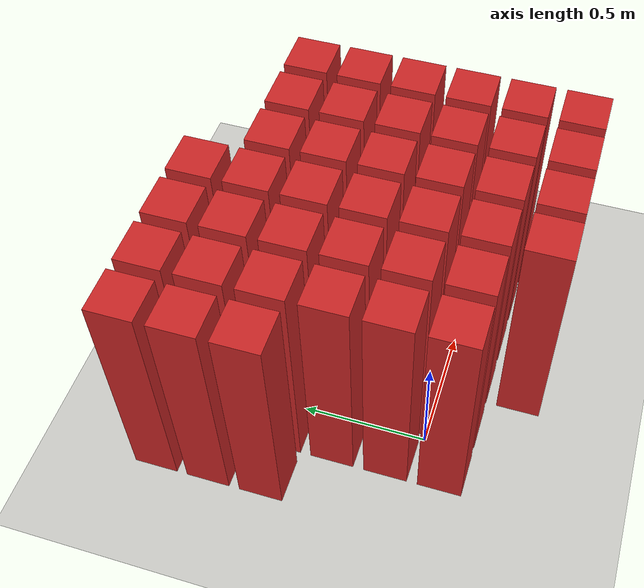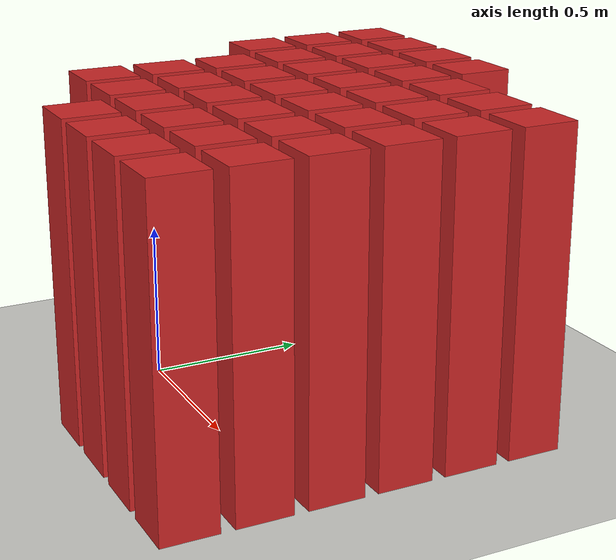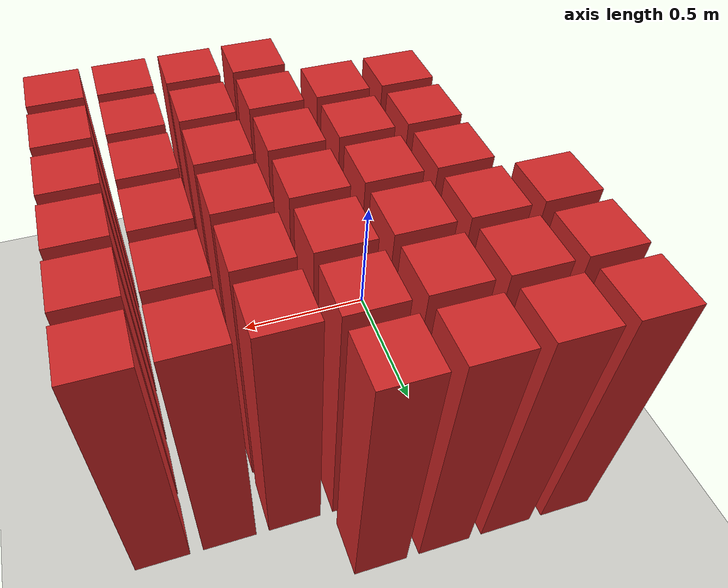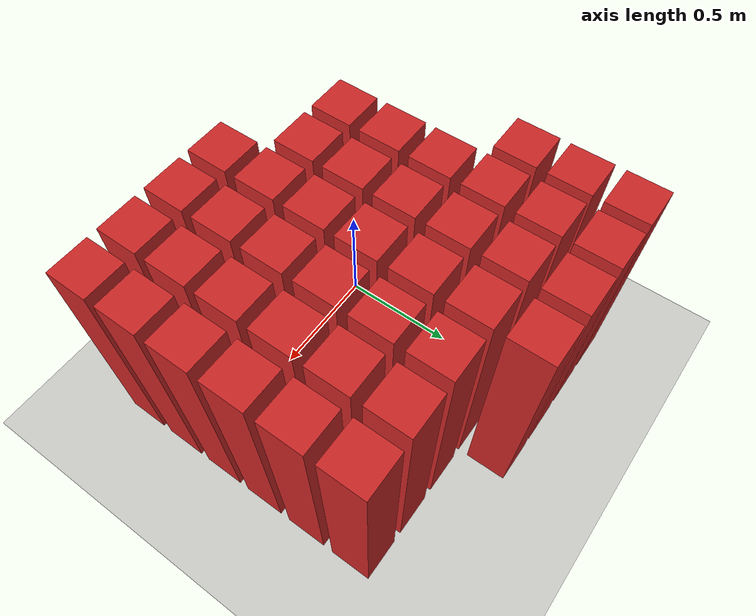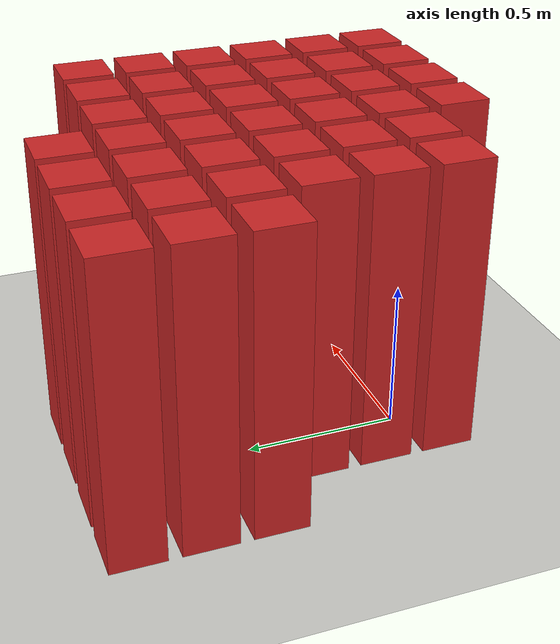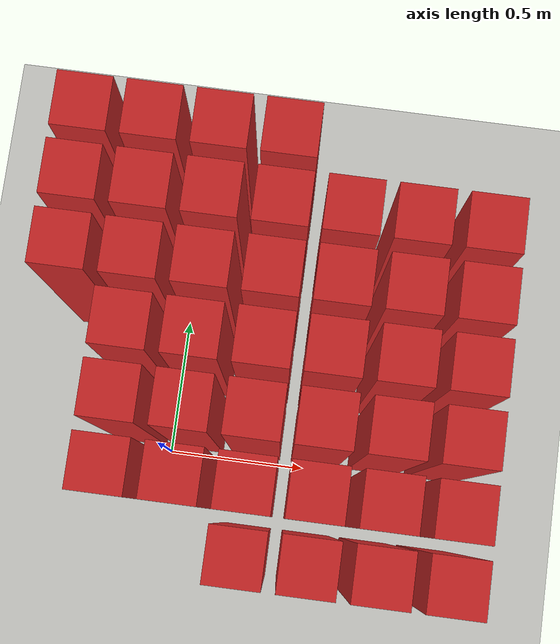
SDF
<sdf version="1.7">
 <world name="default">
  <model name="ground_plane">
   <static>1</static>
   <link name="link">
    <collision name="collision">
     <geometry><plane><normal>0 0 1</normal><size>100 100</size></plane></geometry>
     <surface>
      <contact><collide_bitmask>65535</collide_bitmask></contact>
      <friction><ode><mu>100</mu><mu2>50</mu2></ode></friction>
     </surface>
    </collision>
    <visual name="visual">
     <cast_shadows>0</cast_shadows>
     <geometry><plane><normal>0 0 1</normal><size>100 100</size></plane></geometry>
     <material>
      <script><uri>file://media/materials/scripts/gazebo.material</uri><name>Gazebo/CeilingTiled</name></script>
     </material>
    </visual>
   </link>
  </model>
  <model name="wall243">
   <link name="link">
    <pose>0 0 0.5 0 -0 0</pose>
    <inertial>
     <mass>0.5167</mass>
     <inertia>
      <ixx>0.000861167</ixx>
      <ixy>0</ixy>
      <ixz>0</ixz>
      <iyy>0.000861167</iyy>
      <iyz>0</iyz>
      <izz>0.000861167</izz>
     </inertia>
    </inertial>
    <collision name="collision">
     <geometry><box><size>0.21 0.21 1</size></box></geometry>
     <surface>
      <contact>
       <poissons_ratio>0.347</poissons_ratio>
       <elastic_modulus>8.8e+09</elastic_modulus>
       <ode><kp>100000</kp><kd>100</kd><max_vel>100</max_vel><min_depth>0.001</min_depth></ode>
      </contact>
      <friction>
       <torsional>
        <coefficient>1</coefficient>
        <use_patch_radius>0</use_patch_radius>
        <surface_radius>0.01</surface_radius>
       </torsional>
      </friction>
     </surface>
    </collision>
    <visual name="visual">
     <geometry><box><size>0.175 0.175 1</size></box></geometry>
     <material>
      <script><uri>file://media/materials/scripts/gazebo.material</uri><name>Gazebo/Red</name></script>
     </material>
    </visual>
   </link>
   <pose>0.326087 -0.326087 0 0 -0 0</pose>
  </model>
  <model name="wall244">
   <link name="link">
    <pose>0 0 0.5 0 -0 0</pose>
    <inertial>
     <mass>0.5167</mass>
     <inertia>
      <ixx>0.000861167</ixx>
      <ixy>0</ixy>
      <ixz>0</ixz>
      <iyy>0.000861167</iyy>
      <iyz>0</iyz>
      <izz>0.000861167</izz>
     </inertia>
    </inertial>
    <collision name="collision">
     <geometry><box><size>0.21 0.21 1</size></box></geometry>
     <surface>
      <contact>
       <poissons_ratio>0.347</poissons_ratio>
       <elastic_modulus>8.8e+09</elastic_modulus>
       <ode><kp>100000</kp><kd>100</kd><max_vel>100</max_vel><min_depth>0.001</min_depth></ode>
      </contact>
      <friction>
       <torsional>
        <coefficient>1</coefficient>
        <use_patch_radius>0</use_patch_radius>
        <surface_radius>0.01</surface_radius>
       </torsional>
      </friction>
     </surface>
    </collision>
    <visual name="visual">
     <geometry><box><size>0.175 0.175 1</size></box></geometry>
     <material>
      <script><uri>file://media/materials/scripts/gazebo.material</uri><name>Gazebo/Red</name></script>
     </material>
    </visual>
   </link>
   <pose>0.543478 -0.326087 0 0 -0 0</pose>
  </model>
  <model name="wall245">
   <link name="link">
    <pose>0 0 0.5 0 -0 0</pose>
    <inertial>
     <mass>0.5167</mass>
     <inertia>
      <ixx>0.000861167</ixx>
      <ixy>0</ixy>
      <ixz>0</ixz>
      <iyy>0.000861167</iyy>
      <iyz>0</iyz>
      <izz>0.000861167</izz>
     </inertia>
    </inertial>
    <collision name="collision">
     <geometry><box><size>0.21 0.21 1</size></box></geometry>
     <surface>
      <contact>
       <poissons_ratio>0.347</poissons_ratio>
       <elastic_modulus>8.8e+09</elastic_modulus>
       <ode><kp>100000</kp><kd>100</kd><max_vel>100</max_vel><min_depth>0.001</min_depth></ode>
      </contact>
      <friction>
       <torsional>
        <coefficient>1</coefficient>
        <use_patch_radius>0</use_patch_radius>
        <surface_radius>0.01</surface_radius>
       </torsional>
      </friction>
     </surface>
    </collision>
    <visual name="visual">
     <geometry><box><size>0.175 0.175 1</size></box></geometry>
     <material>
      <script><uri>file://media/materials/scripts/gazebo.material</uri><name>Gazebo/Red</name></script>
     </material>
    </visual>
   </link>
   <pose>0.76087 -0.326087 0 0 -0 0</pose>
  </model>
  <model name="wall246">
   <link name="link">
    <pose>0 0 0.5 0 -0 0</pose>
    <inertial>
     <mass>0.5167</mass>
     <inertia>
      <ixx>0.000861167</ixx>
      <ixy>0</ixy>
      <ixz>0</ixz>
      <iyy>0.000861167</iyy>
      <iyz>0</iyz>
      <izz>0.000861167</izz>
     </inertia>
    </inertial>
    <collision name="collision">
     <geometry><box><size>0.21 0.21 1</size></box></geometry>
     <surface>
      <contact>
       <poissons_ratio>0.347</poissons_ratio>
       <elastic_modulus>8.8e+09</elastic_modulus>
       <ode><kp>100000</kp><kd>100</kd><max_vel>100</max_vel><min_depth>0.001</min_depth></ode>
      </contact>
      <friction>
       <torsional>
        <coefficient>1</coefficient>
        <use_patch_radius>0</use_patch_radius>
        <surface_radius>0.01</surface_radius>
       </torsional>
      </friction>
     </surface>
    </collision>
    <visual name="visual">
     <geometry><box><size>0.175 0.175 1</size></box></geometry>
     <material>
      <script><uri>file://media/materials/scripts/gazebo.material</uri><name>Gazebo/Red</name></script>
     </material>
    </visual>
   </link>
   <pose>0.978261 -0.326087 0 0 -0 0</pose>
  </model>
  <model name="wall264">
   <link name="link">
    <pose>0 0 0.5 0 -0 0</pose>
    <inertial>
     <mass>0.5167</mass>
     <inertia>
      <ixx>0.000861167</ixx>
      <ixy>0</ixy>
      <ixz>0</ixz>
      <iyy>0.000861167</iyy>
      <iyz>0</iyz>
      <izz>0.000861167</izz>
     </inertia>
    </inertial>
    <collision name="collision">
     <geometry><box><size>0.21 0.21 1</size></box></geometry>
     <surface>
      <contact>
       <poissons_ratio>0.347</poissons_ratio>
       <elastic_modulus>8.8e+09</elastic_modulus>
       <ode><kp>100000</kp><kd>100</kd><max_vel>100</max_vel><min_depth>0.001</min_depth></ode>
      </contact>
      <friction>
       <torsional>
        <coefficient>1</coefficient>
        <use_patch_radius>0</use_patch_radius>
        <surface_radius>0.01</surface_radius>
       </torsional>
      </friction>
     </surface>
    </collision>
    <visual name="visual">
     <geometry><box><size>0.175 0.175 1</size></box></geometry>
     <material>
      <script><uri>file://media/materials/scripts/gazebo.material</uri><name>Gazebo/Red</name></script>
     </material>
    </visual>
   </link>
   <pose>-0.108696 -0.108696 0 0 -0 0</pose>
  </model>
  <model name="wall265">
   <link name="link">
    <pose>0 0 0.5 0 -0 0</pose>
    <inertial>
     <mass>0.5167</mass>
     <inertia>
      <ixx>0.000861167</ixx>
      <ixy>0</ixy>
      <ixz>0</ixz>
      <iyy>0.000861167</iyy>
      <iyz>0</iyz>
      <izz>0.000861167</izz>
     </inertia>
    </inertial>
    <collision name="collision">
     <geometry><box><size>0.21 0.21 1</size></box></geometry>
     <surface>
      <contact>
       <poissons_ratio>0.347</poissons_ratio>
       <elastic_modulus>8.8e+09</elastic_modulus>
       <ode><kp>100000</kp><kd>100</kd><max_vel>100</max_vel><min_depth>0.001</min_depth></ode>
      </contact>
      <friction>
       <torsional>
        <coefficient>1</coefficient>
        <use_patch_radius>0</use_patch_radius>
        <surface_radius>0.01</surface_radius>
       </torsional>
      </friction>
     </surface>
    </collision>
    <visual name="visual">
     <geometry><box><size>0.175 0.175 1</size></box></geometry>
     <material>
      <script><uri>file://media/materials/scripts/gazebo.material</uri><name>Gazebo/Red</name></script>
     </material>
    </visual>
   </link>
   <pose>0.108696 -0.108696 0 0 -0 0</pose>
  </model>
  <model name="wall266">
   <link name="link">
    <pose>0 0 0.5 0 -0 0</pose>
    <inertial>
     <mass>0.5167</mass>
     <inertia>
      <ixx>0.000861167</ixx>
      <ixy>0</ixy>
      <ixz>0</ixz>
      <iyy>0.000861167</iyy>
      <iyz>0</iyz>
      <izz>0.000861167</izz>
     </inertia>
    </inertial>
    <collision name="collision">
     <geometry><box><size>0.21 0.21 1</size></box></geometry>
     <surface>
      <contact>
       <poissons_ratio>0.347</poissons_ratio>
       <elastic_modulus>8.8e+09</elastic_modulus>
       <ode><kp>100000</kp><kd>100</kd><max_vel>100</max_vel><min_depth>0.001</min_depth></ode>
      </contact>
      <friction>
       <torsional>
        <coefficient>1</coefficient>
        <use_patch_radius>0</use_patch_radius>
        <surface_radius>0.01</surface_radius>
       </torsional>
      </friction>
     </surface>
    </collision>
    <visual name="visual">
     <geometry><box><size>0.175 0.175 1</size></box></geometry>
     <material>
      <script><uri>file://media/materials/scripts/gazebo.material</uri><name>Gazebo/Red</name></script>
     </material>
    </visual>
   </link>
   <pose>0.326087 -0.108696 0 0 -0 0</pose>
  </model>
  <model name="wall267">
   <link name="link">
    <pose>0 0 0.5 0 -0 0</pose>
    <inertial>
     <mass>0.5167</mass>
     <inertia>
      <ixx>0.000861167</ixx>
      <ixy>0</ixy>
      <ixz>0</ixz>
      <iyy>0.000861167</iyy>
      <iyz>0</iyz>
      <izz>0.000861167</izz>
     </inertia>
    </inertial>
    <collision name="collision">
     <geometry><box><size>0.21 0.21 1</size></box></geometry>
     <surface>
      <contact>
       <poissons_ratio>0.347</poissons_ratio>
       <elastic_modulus>8.8e+09</elastic_modulus>
       <ode><kp>100000</kp><kd>100</kd><max_vel>100</max_vel><min_depth>0.001</min_depth></ode>
      </contact>
      <friction>
       <torsional>
        <coefficient>1</coefficient>
        <use_patch_radius>0</use_patch_radius>
        <surface_radius>0.01</surface_radius>
       </torsional>
      </friction>
     </surface>
    </collision>
    <visual name="visual">
     <geometry><box><size>0.175 0.175 1</size></box></geometry>
     <material>
      <script><uri>file://media/materials/scripts/gazebo.material</uri><name>Gazebo/Red</name></script>
     </material>
    </visual>
   </link>
   <pose>0.543478 -0.108696 0 0 -0 0</pose>
  </model>
  <model name="wall268">
   <link name="link">
    <pose>0 0 0.5 0 -0 0</pose>
    <inertial>
     <mass>0.5167</mass>
     <inertia>
      <ixx>0.000861167</ixx>
      <ixy>0</ixy>
      <ixz>0</ixz>
      <iyy>0.000861167</iyy>
      <iyz>0</iyz>
      <izz>0.000861167</izz>
     </inertia>
    </inertial>
    <collision name="collision">
     <geometry><box><size>0.21 0.21 1</size></box></geometry>
     <surface>
      <contact>
       <poissons_ratio>0.347</poissons_ratio>
       <elastic_modulus>8.8e+09</elastic_modulus>
       <ode><kp>100000</kp><kd>100</kd><max_vel>100</max_vel><min_depth>0.001</min_depth></ode>
      </contact>
      <friction>
       <torsional>
        <coefficient>1</coefficient>
        <use_patch_radius>0</use_patch_radius>
        <surface_radius>0.01</surface_radius>
       </torsional>
      </friction>
     </surface>
    </collision>
    <visual name="visual">
     <geometry><box><size>0.175 0.175 1</size></box></geometry>
     <material>
      <script><uri>file://media/materials/scripts/gazebo.material</uri><name>Gazebo/Red</name></script>
     </material>
    </visual>
   </link>
   <pose>0.76087 -0.108696 0 0 -0 0</pose>
  </model>
  <model name="wall269">
   <link name="link">
    <pose>0 0 0.5 0 -0 0</pose>
    <inertial>
     <mass>0.5167</mass>
     <inertia>
      <ixx>0.000861167</ixx>
      <ixy>0</ixy>
      <ixz>0</ixz>
      <iyy>0.000861167</iyy>
      <iyz>0</iyz>
      <izz>0.000861167</izz>
     </inertia>
    </inertial>
    <collision name="collision">
     <geometry><box><size>0.21 0.21 1</size></box></geometry>
     <surface>
      <contact>
       <poissons_ratio>0.347</poissons_ratio>
       <elastic_modulus>8.8e+09</elastic_modulus>
       <ode><kp>100000</kp><kd>100</kd><max_vel>100</max_vel><min_depth>0.001</min_depth></ode>
      </contact>
      <friction>
       <torsional>
        <coefficient>1</coefficient>
        <use_patch_radius>0</use_patch_radius>
        <surface_radius>0.01</surface_radius>
       </torsional>
      </friction>
     </surface>
    </collision>
    <visual name="visual">
     <geometry><box><size>0.175 0.175 1</size></box></geometry>
     <material>
      <script><uri>file://media/materials/scripts/gazebo.material</uri><name>Gazebo/Red</name></script>
     </material>
    </visual>
   </link>
   <pose>0.978261 -0.108696 0 0 -0 0</pose>
  </model>
  <model name="wall287">
   <link name="link">
    <pose>0 0 0.5 0 -0 0</pose>
    <inertial>
     <mass>0.5167</mass>
     <inertia>
      <ixx>0.000861167</ixx>
      <ixy>0</ixy>
      <ixz>0</ixz>
      <iyy>0.000861167</iyy>
      <iyz>0</iyz>
      <izz>0.000861167</izz>
     </inertia>
    </inertial>
    <collision name="collision">
     <geometry><box><size>0.21 0.21 1</size></box></geometry>
     <surface>
      <contact>
       <poissons_ratio>0.347</poissons_ratio>
       <elastic_modulus>8.8e+09</elastic_modulus>
       <ode><kp>100000</kp><kd>100</kd><max_vel>100</max_vel><min_depth>0.001</min_depth></ode>
      </contact>
      <friction>
       <torsional>
        <coefficient>1</coefficient>
        <use_patch_radius>0</use_patch_radius>
        <surface_radius>0.01</surface_radius>
       </torsional>
      </friction>
     </surface>
    </collision>
    <visual name="visual">
     <geometry><box><size>0.175 0.175 1</size></box></geometry>
     <material>
      <script><uri>file://media/materials/scripts/gazebo.material</uri><name>Gazebo/Red</name></script>
     </material>
    </visual>
   </link>
   <pose>-0.108696 0.108696 0 0 -0 0</pose>
  </model>
  <model name="wall288">
   <link name="link">
    <pose>0 0 0.5 0 -0 0</pose>
    <inertial>
     <mass>0.5167</mass>
     <inertia>
      <ixx>0.000861167</ixx>
      <ixy>0</ixy>
      <ixz>0</ixz>
      <iyy>0.000861167</iyy>
      <iyz>0</iyz>
      <izz>0.000861167</izz>
     </inertia>
    </inertial>
    <collision name="collision">
     <geometry><box><size>0.21 0.21 1</size></box></geometry>
     <surface>
      <contact>
       <poissons_ratio>0.347</poissons_ratio>
       <elastic_modulus>8.8e+09</elastic_modulus>
       <ode><kp>100000</kp><kd>100</kd><max_vel>100</max_vel><min_depth>0.001</min_depth></ode>
      </contact>
      <friction>
       <torsional>
        <coefficient>1</coefficient>
        <use_patch_radius>0</use_patch_radius>
        <surface_radius>0.01</surface_radius>
       </torsional>
      </friction>
     </surface>
    </collision>
    <visual name="visual">
     <geometry><box><size>0.175 0.175 1</size></box></geometry>
     <material>
      <script><uri>file://media/materials/scripts/gazebo.material</uri><name>Gazebo/Red</name></script>
     </material>
    </visual>
   </link>
   <pose>0.108696 0.108696 0 0 -0 0</pose>
  </model>
  <model name="wall289">
   <link name="link">
    <pose>0 0 0.5 0 -0 0</pose>
    <inertial>
     <mass>0.5167</mass>
     <inertia>
      <ixx>0.000861167</ixx>
      <ixy>0</ixy>
      <ixz>0</ixz>
      <iyy>0.000861167</iyy>
      <iyz>0</iyz>
      <izz>0.000861167</izz>
     </inertia>
    </inertial>
    <collision name="collision">
     <geometry><box><size>0.21 0.21 1</size></box></geometry>
     <surface>
      <contact>
       <poissons_ratio>0.347</poissons_ratio>
       <elastic_modulus>8.8e+09</elastic_modulus>
       <ode><kp>100000</kp><kd>100</kd><max_vel>100</max_vel><min_depth>0.001</min_depth></ode>
      </contact>
      <friction>
       <torsional>
        <coefficient>1</coefficient>
        <use_patch_radius>0</use_patch_radius>
        <surface_radius>0.01</surface_radius>
       </torsional>
      </friction>
     </surface>
    </collision>
    <visual name="visual">
     <geometry><box><size>0.175 0.175 1</size></box></geometry>
     <material>
      <script><uri>file://media/materials/scripts/gazebo.material</uri><name>Gazebo/Red</name></script>
     </material>
    </visual>
   </link>
   <pose>0.326087 0.108696 0 0 -0 0</pose>
  </model>
  <model name="wall290">
   <link name="link">
    <pose>0 0 0.5 0 -0 0</pose>
    <inertial>
     <mass>0.5167</mass>
     <inertia>
      <ixx>0.000861167</ixx>
      <ixy>0</ixy>
      <ixz>0</ixz>
      <iyy>0.000861167</iyy>
      <iyz>0</iyz>
      <izz>0.000861167</izz>
     </inertia>
    </inertial>
    <collision name="collision">
     <geometry><box><size>0.21 0.21 1</size></box></geometry>
     <surface>
      <contact>
       <poissons_ratio>0.347</poissons_ratio>
       <elastic_modulus>8.8e+09</elastic_modulus>
       <ode><kp>100000</kp><kd>100</kd><max_vel>100</max_vel><min_depth>0.001</min_depth></ode>
      </contact>
      <friction>
       <torsional>
        <coefficient>1</coefficient>
        <use_patch_radius>0</use_patch_radius>
        <surface_radius>0.01</surface_radius>
       </torsional>
      </friction>
     </surface>
    </collision>
    <visual name="visual">
     <geometry><box><size>0.175 0.175 1</size></box></geometry>
     <material>
      <script><uri>file://media/materials/scripts/gazebo.material</uri><name>Gazebo/Red</name></script>
     </material>
    </visual>
   </link>
   <pose>0.543478 0.108696 0 0 -0 0</pose>
  </model>
  <model name="wall291">
   <link name="link">
    <pose>0 0 0.5 0 -0 0</pose>
    <inertial>
     <mass>0.5167</mass>
     <inertia>
      <ixx>0.000861167</ixx>
      <ixy>0</ixy>
      <ixz>0</ixz>
      <iyy>0.000861167</iyy>
      <iyz>0</iyz>
      <izz>0.000861167</izz>
     </inertia>
    </inertial>
    <collision name="collision">
     <geometry><box><size>0.21 0.21 1</size></box></geometry>
     <surface>
      <contact>
       <poissons_ratio>0.347</poissons_ratio>
       <elastic_modulus>8.8e+09</elastic_modulus>
       <ode><kp>100000</kp><kd>100</kd><max_vel>100</max_vel><min_depth>0.001</min_depth></ode>
      </contact>
      <friction>
       <torsional>
        <coefficient>1</coefficient>
        <use_patch_radius>0</use_patch_radius>
        <surface_radius>0.01</surface_radius>
       </torsional>
      </friction>
     </surface>
    </collision>
    <visual name="visual">
     <geometry><box><size>0.175 0.175 1</size></box></geometry>
     <material>
      <script><uri>file://media/materials/scripts/gazebo.material</uri><name>Gazebo/Red</name></script>
     </material>
    </visual>
   </link>
   <pose>0.76087 0.108696 0 0 -0 0</pose>
  </model>
  <model name="wall292">
   <link name="link">
    <pose>0 0 0.5 0 -0 0</pose>
    <inertial>
     <mass>0.5167</mass>
     <inertia>
      <ixx>0.000861167</ixx>
      <ixy>0</ixy>
      <ixz>0</ixz>
      <iyy>0.000861167</iyy>
      <iyz>0</iyz>
      <izz>0.000861167</izz>
     </inertia>
    </inertial>
    <collision name="collision">
     <geometry><box><size>0.21 0.21 1</size></box></geometry>
     <surface>
      <contact>
       <poissons_ratio>0.347</poissons_ratio>
       <elastic_modulus>8.8e+09</elastic_modulus>
       <ode><kp>100000</kp><kd>100</kd><max_vel>100</max_vel><min_depth>0.001</min_depth></ode>
      </contact>
      <friction>
       <torsional>
        <coefficient>1</coefficient>
        <use_patch_radius>0</use_patch_radius>
        <surface_radius>0.01</surface_radius>
       </torsional>
      </friction>
     </surface>
    </collision>
    <visual name="visual">
     <geometry><box><size>0.175 0.175 1</size></box></geometry>
     <material>
      <script><uri>file://media/materials/scripts/gazebo.material</uri><name>Gazebo/Red</name></script>
     </material>
    </visual>
   </link>
   <pose>0.978261 0.108696 0 0 -0 0</pose>
  </model>
  <model name="wall310">
   <link name="link">
    <pose>0 0 0.5 0 -0 0</pose>
    <inertial>
     <mass>0.5167</mass>
     <inertia>
      <ixx>0.000861167</ixx>
      <ixy>0</ixy>
      <ixz>0</ixz>
      <iyy>0.000861167</iyy>
      <iyz>0</iyz>
      <izz>0.000861167</izz>
     </inertia>
    </inertial>
    <collision name="collision">
     <geometry><box><size>0.21 0.21 1</size></box></geometry>
     <surface>
      <contact>
       <poissons_ratio>0.347</poissons_ratio>
       <elastic_modulus>8.8e+09</elastic_modulus>
       <ode><kp>100000</kp><kd>100</kd><max_vel>100</max_vel><min_depth>0.001</min_depth></ode>
      </contact>
      <friction>
       <torsional>
        <coefficient>1</coefficient>
        <use_patch_radius>0</use_patch_radius>
        <surface_radius>0.01</surface_radius>
       </torsional>
      </friction>
     </surface>
    </collision>
    <visual name="visual">
     <geometry><box><size>0.175 0.175 1</size></box></geometry>
     <material>
      <script><uri>file://media/materials/scripts/gazebo.material</uri><name>Gazebo/Red</name></script>
     </material>
    </visual>
   </link>
   <pose>-0.108696 0.326087 0 0 -0 0</pose>
  </model>
  <model name="wall311">
   <link name="link">
    <pose>0 0 0.5 0 -0 0</pose>
    <inertial>
     <mass>0.5167</mass>
     <inertia>
      <ixx>0.000861167</ixx>
      <ixy>0</ixy>
      <ixz>0</ixz>
      <iyy>0.000861167</iyy>
      <iyz>0</iyz>
      <izz>0.000861167</izz>
     </inertia>
    </inertial>
    <collision name="collision">
     <geometry><box><size>0.21 0.21 1</size></box></geometry>
     <surface>
      <contact>
       <poissons_ratio>0.347</poissons_ratio>
       <elastic_modulus>8.8e+09</elastic_modulus>
       <ode><kp>100000</kp><kd>100</kd><max_vel>100</max_vel><min_depth>0.001</min_depth></ode>
      </contact>
      <friction>
       <torsional>
        <coefficient>1</coefficient>
        <use_patch_radius>0</use_patch_radius>
        <surface_radius>0.01</surface_radius>
       </torsional>
      </friction>
     </surface>
    </collision>
    <visual name="visual">
     <geometry><box><size>0.175 0.175 1</size></box></geometry>
     <material>
      <script><uri>file://media/materials/scripts/gazebo.material</uri><name>Gazebo/Red</name></script>
     </material>
    </visual>
   </link>
   <pose>0.108696 0.326087 0 0 -0 0</pose>
  </model>
  <model name="wall312">
   <link name="link">
    <pose>0 0 0.5 0 -0 0</pose>
    <inertial>
     <mass>0.5167</mass>
     <inertia>
      <ixx>0.000861167</ixx>
      <ixy>0</ixy>
      <ixz>0</ixz>
      <iyy>0.000861167</iyy>
      <iyz>0</iyz>
      <izz>0.000861167</izz>
     </inertia>
    </inertial>
    <collision name="collision">
     <geometry><box><size>0.21 0.21 1</size></box></geometry>
     <surface>
      <contact>
       <poissons_ratio>0.347</poissons_ratio>
       <elastic_modulus>8.8e+09</elastic_modulus>
       <ode><kp>100000</kp><kd>100</kd><max_vel>100</max_vel><min_depth>0.001</min_depth></ode>
      </contact>
      <friction>
       <torsional>
        <coefficient>1</coefficient>
        <use_patch_radius>0</use_patch_radius>
        <surface_radius>0.01</surface_radius>
       </torsional>
      </friction>
     </surface>
    </collision>
    <visual name="visual">
     <geometry><box><size>0.175 0.175 1</size></box></geometry>
     <material>
      <script><uri>file://media/materials/scripts/gazebo.material</uri><name>Gazebo/Red</name></script>
     </material>
    </visual>
   </link>
   <pose>0.326087 0.326087 0 0 -0 0</pose>
  </model>
  <model name="wall313">
   <link name="link">
    <pose>0 0 0.5 0 -0 0</pose>
    <inertial>
     <mass>0.5167</mass>
     <inertia>
      <ixx>0.000861167</ixx>
      <ixy>0</ixy>
      <ixz>0</ixz>
      <iyy>0.000861167</iyy>
      <iyz>0</iyz>
      <izz>0.000861167</izz>
     </inertia>
    </inertial>
    <collision name="collision">
     <geometry><box><size>0.21 0.21 1</size></box></geometry>
     <surface>
      <contact>
       <poissons_ratio>0.347</poissons_ratio>
       <elastic_modulus>8.8e+09</elastic_modulus>
       <ode><kp>100000</kp><kd>100</kd><max_vel>100</max_vel><min_depth>0.001</min_depth></ode>
      </contact>
      <friction>
       <torsional>
        <coefficient>1</coefficient>
        <use_patch_radius>0</use_patch_radius>
        <surface_radius>0.01</surface_radius>
       </torsional>
      </friction>
     </surface>
    </collision>
    <visual name="visual">
     <geometry><box><size>0.175 0.175 1</size></box></geometry>
     <material>
      <script><uri>file://media/materials/scripts/gazebo.material</uri><name>Gazebo/Red</name></script>
     </material>
    </visual>
   </link>
   <pose>0.543478 0.326087 0 0 -0 0</pose>
  </model>
  <model name="wall314">
   <link name="link">
    <pose>0 0 0.5 0 -0 0</pose>
    <inertial>
     <mass>0.5167</mass>
     <inertia>
      <ixx>0.000861167</ixx>
      <ixy>0</ixy>
      <ixz>0</ixz>
      <iyy>0.000861167</iyy>
      <iyz>0</iyz>
      <izz>0.000861167</izz>
     </inertia>
    </inertial>
    <collision name="collision">
     <geometry><box><size>0.21 0.21 1</size></box></geometry>
     <surface>
      <contact>
       <poissons_ratio>0.347</poissons_ratio>
       <elastic_modulus>8.8e+09</elastic_modulus>
       <ode><kp>100000</kp><kd>100</kd><max_vel>100</max_vel><min_depth>0.001</min_depth></ode>
      </contact>
      <friction>
       <torsional>
        <coefficient>1</coefficient>
        <use_patch_radius>0</use_patch_radius>
        <surface_radius>0.01</surface_radius>
       </torsional>
      </friction>
     </surface>
    </collision>
    <visual name="visual">
     <geometry><box><size>0.175 0.175 1</size></box></geometry>
     <material>
      <script><uri>file://media/materials/scripts/gazebo.material</uri><name>Gazebo/Red</name></script>
     </material>
    </visual>
   </link>
   <pose>0.76087 0.326087 0 0 -0 0</pose>
  </model>
  <model name="wall315">
   <link name="link">
    <pose>0 0 0.5 0 -0 0</pose>
    <inertial>
     <mass>0.5167</mass>
     <inertia>
      <ixx>0.000861167</ixx>
      <ixy>0</ixy>
      <ixz>0</ixz>
      <iyy>0.000861167</iyy>
      <iyz>0</iyz>
      <izz>0.000861167</izz>
     </inertia>
    </inertial>
    <collision name="collision">
     <geometry><box><size>0.21 0.21 1</size></box></geometry>
     <surface>
      <contact>
       <poissons_ratio>0.347</poissons_ratio>
       <elastic_modulus>8.8e+09</elastic_modulus>
       <ode><kp>100000</kp><kd>100</kd><max_vel>100</max_vel><min_depth>0.001</min_depth></ode>
      </contact>
      <friction>
       <torsional>
        <coefficient>1</coefficient>
        <use_patch_radius>0</use_patch_radius>
        <surface_radius>0.01</surface_radius>
       </torsional>
      </friction>
     </surface>
    </collision>
    <visual name="visual">
     <geometry><box><size>0.175 0.175 1</size></box></geometry>
     <material>
      <script><uri>file://media/materials/scripts/gazebo.material</uri><name>Gazebo/Red</name></script>
     </material>
    </visual>
   </link>
   <pose>0.978261 0.326087 0 0 -0 0</pose>
  </model>
  <model name="wall332">
   <link name="link">
    <pose>0 0 0.5 0 -0 0</pose>
    <inertial>
     <mass>0.5167</mass>
     <inertia>
      <ixx>0.000861167</ixx>
      <ixy>0</ixy>
      <ixz>0</ixz>
      <iyy>0.000861167</iyy>
      <iyz>0</iyz>
      <izz>0.000861167</izz>
     </inertia>
    </inertial>
    <collision name="collision">
     <geometry><box><size>0.21 0.21 1</size></box></geometry>
     <surface>
      <contact>
       <poissons_ratio>0.347</poissons_ratio>
       <elastic_modulus>8.8e+09</elastic_modulus>
       <ode><kp>100000</kp><kd>100</kd><max_vel>100</max_vel><min_depth>0.001</min_depth></ode>
      </contact>
      <friction>
       <torsional>
        <coefficient>1</coefficient>
        <use_patch_radius>0</use_patch_radius>
        <surface_radius>0.01</surface_radius>
       </torsional>
      </friction>
     </surface>
    </collision>
    <visual name="visual">
     <geometry><box><size>0.175 0.175 1</size></box></geometry>
     <material>
      <script><uri>file://media/materials/scripts/gazebo.material</uri><name>Gazebo/Red</name></script>
     </material>
    </visual>
   </link>
   <pose>-0.326087 0.543478 0 0 -0 0</pose>
  </model>
  <model name="wall333">
   <link name="link">
    <pose>0 0 0.5 0 -0 0</pose>
    <inertial>
     <mass>0.5167</mass>
     <inertia>
      <ixx>0.000861167</ixx>
      <ixy>0</ixy>
      <ixz>0</ixz>
      <iyy>0.000861167</iyy>
      <iyz>0</iyz>
      <izz>0.000861167</izz>
     </inertia>
    </inertial>
    <collision name="collision">
     <geometry><box><size>0.21 0.21 1</size></box></geometry>
     <surface>
      <contact>
       <poissons_ratio>0.347</poissons_ratio>
       <elastic_modulus>8.8e+09</elastic_modulus>
       <ode><kp>100000</kp><kd>100</kd><max_vel>100</max_vel><min_depth>0.001</min_depth></ode>
      </contact>
      <friction>
       <torsional>
        <coefficient>1</coefficient>
        <use_patch_radius>0</use_patch_radius>
        <surface_radius>0.01</surface_radius>
       </torsional>
      </friction>
     </surface>
    </collision>
    <visual name="visual">
     <geometry><box><size>0.175 0.175 1</size></box></geometry>
     <material>
      <script><uri>file://media/materials/scripts/gazebo.material</uri><name>Gazebo/Red</name></script>
     </material>
    </visual>
   </link>
   <pose>-0.108696 0.543478 0 0 -0 0</pose>
  </model>
  <model name="wall334">
   <link name="link">
    <pose>0 0 0.5 0 -0 0</pose>
    <inertial>
     <mass>0.5167</mass>
     <inertia>
      <ixx>0.000861167</ixx>
      <ixy>0</ixy>
      <ixz>0</ixz>
      <iyy>0.000861167</iyy>
      <iyz>0</iyz>
      <izz>0.000861167</izz>
     </inertia>
    </inertial>
    <collision name="collision">
     <geometry><box><size>0.21 0.21 1</size></box></geometry>
     <surface>
      <contact>
       <poissons_ratio>0.347</poissons_ratio>
       <elastic_modulus>8.8e+09</elastic_modulus>
       <ode><kp>100000</kp><kd>100</kd><max_vel>100</max_vel><min_depth>0.001</min_depth></ode>
      </contact>
      <friction>
       <torsional>
        <coefficient>1</coefficient>
        <use_patch_radius>0</use_patch_radius>
        <surface_radius>0.01</surface_radius>
       </torsional>
      </friction>
     </surface>
    </collision>
    <visual name="visual">
     <geometry><box><size>0.175 0.175 1</size></box></geometry>
     <material>
      <script><uri>file://media/materials/scripts/gazebo.material</uri><name>Gazebo/Red</name></script>
     </material>
    </visual>
   </link>
   <pose>0.108696 0.543478 0 0 -0 0</pose>
  </model>
  <model name="wall335">
   <link name="link">
    <pose>0 0 0.5 0 -0 0</pose>
    <inertial>
     <mass>0.5167</mass>
     <inertia>
      <ixx>0.000861167</ixx>
      <ixy>0</ixy>
      <ixz>0</ixz>
      <iyy>0.000861167</iyy>
      <iyz>0</iyz>
      <izz>0.000861167</izz>
     </inertia>
    </inertial>
    <collision name="collision">
     <geometry><box><size>0.21 0.21 1</size></box></geometry>
     <surface>
      <contact>
       <poissons_ratio>0.347</poissons_ratio>
       <elastic_modulus>8.8e+09</elastic_modulus>
       <ode><kp>100000</kp><kd>100</kd><max_vel>100</max_vel><min_depth>0.001</min_depth></ode>
      </contact>
      <friction>
       <torsional>
        <coefficient>1</coefficient>
        <use_patch_radius>0</use_patch_radius>
        <surface_radius>0.01</surface_radius>
       </torsional>
      </friction>
     </surface>
    </collision>
    <visual name="visual">
     <geometry><box><size>0.175 0.175 1</size></box></geometry>
     <material>
      <script><uri>file://media/materials/scripts/gazebo.material</uri><name>Gazebo/Red</name></script>
     </material>
    </visual>
   </link>
   <pose>0.326087 0.543478 0 0 -0 0</pose>
  </model>
  <model name="wall336">
   <link name="link">
    <pose>0 0 0.5 0 -0 0</pose>
    <inertial>
     <mass>0.5167</mass>
     <inertia>
      <ixx>0.000861167</ixx>
      <ixy>0</ixy>
      <ixz>0</ixz>
      <iyy>0.000861167</iyy>
      <iyz>0</iyz>
      <izz>0.000861167</izz>
     </inertia>
    </inertial>
    <collision name="collision">
     <geometry><box><size>0.21 0.21 1</size></box></geometry>
     <surface>
      <contact>
       <poissons_ratio>0.347</poissons_ratio>
       <elastic_modulus>8.8e+09</elastic_modulus>
       <ode><kp>100000</kp><kd>100</kd><max_vel>100</max_vel><min_depth>0.001</min_depth></ode>
      </contact>
      <friction>
       <torsional>
        <coefficient>1</coefficient>
        <use_patch_radius>0</use_patch_radius>
        <surface_radius>0.01</surface_radius>
       </torsional>
      </friction>
     </surface>
    </collision>
    <visual name="visual">
     <geometry><box><size>0.175 0.175 1</size></box></geometry>
     <material>
      <script><uri>file://media/materials/scripts/gazebo.material</uri><name>Gazebo/Red</name></script>
     </material>
    </visual>
   </link>
   <pose>0.543478 0.543478 0 0 -0 0</pose>
  </model>
  <model name="wall337">
   <link name="link">
    <pose>0 0 0.5 0 -0 0</pose>
    <inertial>
     <mass>0.5167</mass>
     <inertia>
      <ixx>0.000861167</ixx>
      <ixy>0</ixy>
      <ixz>0</ixz>
      <iyy>0.000861167</iyy>
      <iyz>0</iyz>
      <izz>0.000861167</izz>
     </inertia>
    </inertial>
    <collision name="collision">
     <geometry><box><size>0.21 0.21 1</size></box></geometry>
     <surface>
      <contact>
       <poissons_ratio>0.347</poissons_ratio>
       <elastic_modulus>8.8e+09</elastic_modulus>
       <ode><kp>100000</kp><kd>100</kd><max_vel>100</max_vel><min_depth>0.001</min_depth></ode>
      </contact>
      <friction>
       <torsional>
        <coefficient>1</coefficient>
        <use_patch_radius>0</use_patch_radius>
        <surface_radius>0.01</surface_radius>
       </torsional>
      </friction>
     </surface>
    </collision>
    <visual name="visual">
     <geometry><box><size>0.175 0.175 1</size></box></geometry>
     <material>
      <script><uri>file://media/materials/scripts/gazebo.material</uri><name>Gazebo/Red</name></script>
     </material>
    </visual>
   </link>
   <pose>0.76087 0.543478 0 0 -0 0</pose>
  </model>
  <model name="wall338">
   <link name="link">
    <pose>0 0 0.5 0 -0 0</pose>
    <inertial>
     <mass>0.5167</mass>
     <inertia>
      <ixx>0.000861167</ixx>
      <ixy>0</ixy>
      <ixz>0</ixz>
      <iyy>0.000861167</iyy>
      <iyz>0</iyz>
      <izz>0.000861167</izz>
     </inertia>
    </inertial>
    <collision name="collision">
     <geometry><box><size>0.21 0.21 1</size></box></geometry>
     <surface>
      <contact>
       <poissons_ratio>0.347</poissons_ratio>
       <elastic_modulus>8.8e+09</elastic_modulus>
       <ode><kp>100000</kp><kd>100</kd><max_vel>100</max_vel><min_depth>0.001</min_depth></ode>
      </contact>
      <friction>
       <torsional>
        <coefficient>1</coefficient>
        <use_patch_radius>0</use_patch_radius>
        <surface_radius>0.01</surface_radius>
       </torsional>
      </friction>
     </surface>
    </collision>
    <visual name="visual">
     <geometry><box><size>0.175 0.175 1</size></box></geometry>
     <material>
      <script><uri>file://media/materials/scripts/gazebo.material</uri><name>Gazebo/Red</name></script>
     </material>
    </visual>
   </link>
   <pose>0.978261 0.543478 0 0 -0 0</pose>
  </model>
  <model name="wall355">
   <link name="link">
    <pose>0 0 0.5 0 -0 0</pose>
    <inertial>
     <mass>0.5167</mass>
     <inertia>
      <ixx>0.000861167</ixx>
      <ixy>0</ixy>
      <ixz>0</ixz>
      <iyy>0.000861167</iyy>
      <iyz>0</iyz>
      <izz>0.000861167</izz>
     </inertia>
    </inertial>
    <collision name="collision">
     <geometry><box><size>0.21 0.21 1</size></box></geometry>
     <surface>
      <contact>
       <poissons_ratio>0.347</poissons_ratio>
       <elastic_modulus>8.8e+09</elastic_modulus>
       <ode><kp>100000</kp><kd>100</kd><max_vel>100</max_vel><min_depth>0.001</min_depth></ode>
      </contact>
      <friction>
       <torsional>
        <coefficient>1</coefficient>
        <use_patch_radius>0</use_patch_radius>
        <surface_radius>0.01</surface_radius>
       </torsional>
      </friction>
     </surface>
    </collision>
    <visual name="visual">
     <geometry><box><size>0.175 0.175 1</size></box></geometry>
     <material>
      <script><uri>file://media/materials/scripts/gazebo.material</uri><name>Gazebo/Red</name></script>
     </material>
    </visual>
   </link>
   <pose>-0.326087 0.76087 0 0 -0 0</pose>
  </model>
  <model name="wall356">
   <link name="link">
    <pose>0 0 0.5 0 -0 0</pose>
    <inertial>
     <mass>0.5167</mass>
     <inertia>
      <ixx>0.000861167</ixx>
      <ixy>0</ixy>
      <ixz>0</ixz>
      <iyy>0.000861167</iyy>
      <iyz>0</iyz>
      <izz>0.000861167</izz>
     </inertia>
    </inertial>
    <collision name="collision">
     <geometry><box><size>0.21 0.21 1</size></box></geometry>
     <surface>
      <contact>
       <poissons_ratio>0.347</poissons_ratio>
       <elastic_modulus>8.8e+09</elastic_modulus>
       <ode><kp>100000</kp><kd>100</kd><max_vel>100</max_vel><min_depth>0.001</min_depth></ode>
      </contact>
      <friction>
       <torsional>
        <coefficient>1</coefficient>
        <use_patch_radius>0</use_patch_radius>
        <surface_radius>0.01</surface_radius>
       </torsional>
      </friction>
     </surface>
    </collision>
    <visual name="visual">
     <geometry><box><size>0.175 0.175 1</size></box></geometry>
     <material>
      <script><uri>file://media/materials/scripts/gazebo.material</uri><name>Gazebo/Red</name></script>
     </material>
    </visual>
   </link>
   <pose>-0.108696 0.76087 0 0 -0 0</pose>
  </model>
  <model name="wall357">
   <link name="link">
    <pose>0 0 0.5 0 -0 0</pose>
    <inertial>
     <mass>0.5167</mass>
     <inertia>
      <ixx>0.000861167</ixx>
      <ixy>0</ixy>
      <ixz>0</ixz>
      <iyy>0.000861167</iyy>
      <iyz>0</iyz>
      <izz>0.000861167</izz>
     </inertia>
    </inertial>
    <collision name="collision">
     <geometry><box><size>0.21 0.21 1</size></box></geometry>
     <surface>
      <contact>
       <poissons_ratio>0.347</poissons_ratio>
       <elastic_modulus>8.8e+09</elastic_modulus>
       <ode><kp>100000</kp><kd>100</kd><max_vel>100</max_vel><min_depth>0.001</min_depth></ode>
      </contact>
      <friction>
       <torsional>
        <coefficient>1</coefficient>
        <use_patch_radius>0</use_patch_radius>
        <surface_radius>0.01</surface_radius>
       </torsional>
      </friction>
     </surface>
    </collision>
    <visual name="visual">
     <geometry><box><size>0.175 0.175 1</size></box></geometry>
     <material>
      <script><uri>file://media/materials/scripts/gazebo.material</uri><name>Gazebo/Red</name></script>
     </material>
    </visual>
   </link>
   <pose>0.108696 0.76087 0 0 -0 0</pose>
  </model>
  <model name="wall358">
   <link name="link">
    <pose>0 0 0.5 0 -0 0</pose>
    <inertial>
     <mass>0.5167</mass>
     <inertia>
      <ixx>0.000861167</ixx>
      <ixy>0</ixy>
      <ixz>0</ixz>
      <iyy>0.000861167</iyy>
      <iyz>0</iyz>
      <izz>0.000861167</izz>
     </inertia>
    </inertial>
    <collision name="collision">
     <geometry><box><size>0.21 0.21 1</size></box></geometry>
     <surface>
      <contact>
       <poissons_ratio>0.347</poissons_ratio>
       <elastic_modulus>8.8e+09</elastic_modulus>
       <ode><kp>100000</kp><kd>100</kd><max_vel>100</max_vel><min_depth>0.001</min_depth></ode>
      </contact>
      <friction>
       <torsional>
        <coefficient>1</coefficient>
        <use_patch_radius>0</use_patch_radius>
        <surface_radius>0.01</surface_radius>
       </torsional>
      </friction>
     </surface>
    </collision>
    <visual name="visual">
     <geometry><box><size>0.175 0.175 1</size></box></geometry>
     <material>
      <script><uri>file://media/materials/scripts/gazebo.material</uri><name>Gazebo/Red</name></script>
     </material>
    </visual>
   </link>
   <pose>0.326087 0.76087 0 0 -0 0</pose>
  </model>
  <model name="wall359">
   <link name="link">
    <pose>0 0 0.5 0 -0 0</pose>
    <inertial>
     <mass>0.5167</mass>
     <inertia>
      <ixx>0.000861167</ixx>
      <ixy>0</ixy>
      <ixz>0</ixz>
      <iyy>0.000861167</iyy>
      <iyz>0</iyz>
      <izz>0.000861167</izz>
     </inertia>
    </inertial>
    <collision name="collision">
     <geometry><box><size>0.21 0.21 1</size></box></geometry>
     <surface>
      <contact>
       <poissons_ratio>0.347</poissons_ratio>
       <elastic_modulus>8.8e+09</elastic_modulus>
       <ode><kp>100000</kp><kd>100</kd><max_vel>100</max_vel><min_depth>0.001</min_depth></ode>
      </contact>
      <friction>
       <torsional>
        <coefficient>1</coefficient>
        <use_patch_radius>0</use_patch_radius>
        <surface_radius>0.01</surface_radius>
       </torsional>
      </friction>
     </surface>
    </collision>
    <visual name="visual">
     <geometry><box><size>0.175 0.175 1</size></box></geometry>
     <material>
      <script><uri>file://media/materials/scripts/gazebo.material</uri><name>Gazebo/Red</name></script>
     </material>
    </visual>
   </link>
   <pose>0.543478 0.76087 0 0 -0 0</pose>
  </model>
  <model name="wall360">
   <link name="link">
    <pose>0 0 0.5 0 -0 0</pose>
    <inertial>
     <mass>0.5167</mass>
     <inertia>
      <ixx>0.000861167</ixx>
      <ixy>0</ixy>
      <ixz>0</ixz>
      <iyy>0.000861167</iyy>
      <iyz>0</iyz>
      <izz>0.000861167</izz>
     </inertia>
    </inertial>
    <collision name="collision">
     <geometry><box><size>0.21 0.21 1</size></box></geometry>
     <surface>
      <contact>
       <poissons_ratio>0.347</poissons_ratio>
       <elastic_modulus>8.8e+09</elastic_modulus>
       <ode><kp>100000</kp><kd>100</kd><max_vel>100</max_vel><min_depth>0.001</min_depth></ode>
      </contact>
      <friction>
       <torsional>
        <coefficient>1</coefficient>
        <use_patch_radius>0</use_patch_radius>
        <surface_radius>0.01</surface_radius>
       </torsional>
      </friction>
     </surface>
    </collision>
    <visual name="visual">
     <geometry><box><size>0.175 0.175 1</size></box></geometry>
     <material>
      <script><uri>file://media/materials/scripts/gazebo.material</uri><name>Gazebo/Red</name></script>
     </material>
    </visual>
   </link>
   <pose>0.76087 0.76087 0 0 -0 0</pose>
  </model>
  <model name="wall361">
   <link name="link">
    <pose>0 0 0.5 0 -0 0</pose>
    <inertial>
     <mass>0.5167</mass>
     <inertia>
      <ixx>0.000861167</ixx>
      <ixy>0</ixy>
      <ixz>0</ixz>
      <iyy>0.000861167</iyy>
      <iyz>0</iyz>
      <izz>0.000861167</izz>
     </inertia>
    </inertial>
    <collision name="collision">
     <geometry><box><size>0.21 0.21 1</size></box></geometry>
     <surface>
      <contact>
       <poissons_ratio>0.347</poissons_ratio>
       <elastic_modulus>8.8e+09</elastic_modulus>
       <ode><kp>100000</kp><kd>100</kd><max_vel>100</max_vel><min_depth>0.001</min_depth></ode>
      </contact>
      <friction>
       <torsional>
        <coefficient>1</coefficient>
        <use_patch_radius>0</use_patch_radius>
        <surface_radius>0.01</surface_radius>
       </torsional>
      </friction>
     </surface>
    </collision>
    <visual name="visual">
     <geometry><box><size>0.175 0.175 1</size></box></geometry>
     <material>
      <script><uri>file://media/materials/scripts/gazebo.material</uri><name>Gazebo/Red</name></script>
     </material>
    </visual>
   </link>
   <pose>0.978261 0.76087 0 0 -0 0</pose>
  </model>
  <model name="wall378">
   <link name="link">
    <pose>0 0 0.5 0 -0 0</pose>
    <inertial>
     <mass>0.5167</mass>
     <inertia>
      <ixx>0.000861167</ixx>
      <ixy>0</ixy>
      <ixz>0</ixz>
      <iyy>0.000861167</iyy>
      <iyz>0</iyz>
      <izz>0.000861167</izz>
     </inertia>
    </inertial>
    <collision name="collision">
     <geometry><box><size>0.21 0.21 1</size></box></geometry>
     <surface>
      <contact>
       <poissons_ratio>0.347</poissons_ratio>
       <elastic_modulus>8.8e+09</elastic_modulus>
       <ode><kp>100000</kp><kd>100</kd><max_vel>100</max_vel><min_depth>0.001</min_depth></ode>
      </contact>
      <friction>
       <torsional>
        <coefficient>1</coefficient>
        <use_patch_radius>0</use_patch_radius>
        <surface_radius>0.01</surface_radius>
       </torsional>
      </friction>
     </surface>
    </collision>
    <visual name="visual">
     <geometry><box><size>0.175 0.175 1</size></box></geometry>
     <material>
      <script><uri>file://media/materials/scripts/gazebo.material</uri><name>Gazebo/Red</name></script>
     </material>
    </visual>
   </link>
   <pose>-0.326087 0.978261 0 0 -0 0</pose>
  </model>
  <model name="wall379">
   <link name="link">
    <pose>0 0 0.5 0 -0 0</pose>
    <inertial>
     <mass>0.5167</mass>
     <inertia>
      <ixx>0.000861167</ixx>
      <ixy>0</ixy>
      <ixz>0</ixz>
      <iyy>0.000861167</iyy>
      <iyz>0</iyz>
      <izz>0.000861167</izz>
     </inertia>
    </inertial>
    <collision name="collision">
     <geometry><box><size>0.21 0.21 1</size></box></geometry>
     <surface>
      <contact>
       <poissons_ratio>0.347</poissons_ratio>
       <elastic_modulus>8.8e+09</elastic_modulus>
       <ode><kp>100000</kp><kd>100</kd><max_vel>100</max_vel><min_depth>0.001</min_depth></ode>
      </contact>
      <friction>
       <torsional>
        <coefficient>1</coefficient>
        <use_patch_radius>0</use_patch_radius>
        <surface_radius>0.01</surface_radius>
       </torsional>
      </friction>
     </surface>
    </collision>
    <visual name="visual">
     <geometry><box><size>0.175 0.175 1</size></box></geometry>
     <material>
      <script><uri>file://media/materials/scripts/gazebo.material</uri><name>Gazebo/Red</name></script>
     </material>
    </visual>
   </link>
   <pose>-0.108696 0.978261 0 0 -0 0</pose>
  </model>
  <model name="wall380">
   <link name="link">
    <pose>0 0 0.5 0 -0 0</pose>
    <inertial>
     <mass>0.5167</mass>
     <inertia>
      <ixx>0.000861167</ixx>
      <ixy>0</ixy>
      <ixz>0</ixz>
      <iyy>0.000861167</iyy>
      <iyz>0</iyz>
      <izz>0.000861167</izz>
     </inertia>
    </inertial>
    <collision name="collision">
     <geometry><box><size>0.21 0.21 1</size></box></geometry>
     <surface>
      <contact>
       <poissons_ratio>0.347</poissons_ratio>
       <elastic_modulus>8.8e+09</elastic_modulus>
       <ode><kp>100000</kp><kd>100</kd><max_vel>100</max_vel><min_depth>0.001</min_depth></ode>
      </contact>
      <friction>
       <torsional>
        <coefficient>1</coefficient>
        <use_patch_radius>0</use_patch_radius>
        <surface_radius>0.01</surface_radius>
       </torsional>
      </friction>
     </surface>
    </collision>
    <visual name="visual">
     <geometry><box><size>0.175 0.175 1</size></box></geometry>
     <material>
      <script><uri>file://media/materials/scripts/gazebo.material</uri><name>Gazebo/Red</name></script>
     </material>
    </visual>
   </link>
   <pose>0.108696 0.978261 0 0 -0 0</pose>
  </model>
  <model name="wall381">
   <link name="link">
    <pose>0 0 0.5 0 -0 0</pose>
    <inertial>
     <mass>0.5167</mass>
     <inertia>
      <ixx>0.000861167</ixx>
      <ixy>0</ixy>
      <ixz>0</ixz>
      <iyy>0.000861167</iyy>
      <iyz>0</iyz>
      <izz>0.000861167</izz>
     </inertia>
    </inertial>
    <collision name="collision">
     <geometry><box><size>0.21 0.21 1</size></box></geometry>
     <surface>
      <contact>
       <poissons_ratio>0.347</poissons_ratio>
       <elastic_modulus>8.8e+09</elastic_modulus>
       <ode><kp>100000</kp><kd>100</kd><max_vel>100</max_vel><min_depth>0.001</min_depth></ode>
      </contact>
      <friction>
       <torsional>
        <coefficient>1</coefficient>
        <use_patch_radius>0</use_patch_radius>
        <surface_radius>0.01</surface_radius>
       </torsional>
      </friction>
     </surface>
    </collision>
    <visual name="visual">
     <geometry><box><size>0.175 0.175 1</size></box></geometry>
     <material>
      <script><uri>file://media/materials/scripts/gazebo.material</uri><name>Gazebo/Red</name></script>
     </material>
    </visual>
   </link>
   <pose>0.326087 0.978261 0 0 -0 0</pose>
  </model>
 </world>
</sdf>
